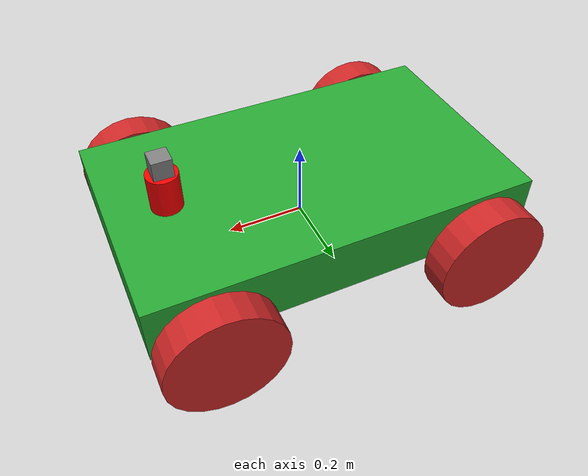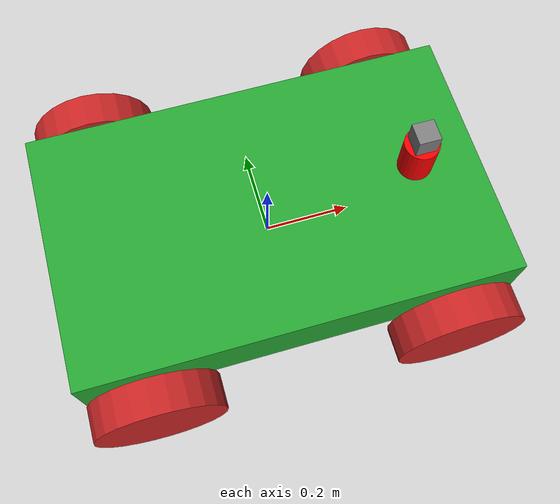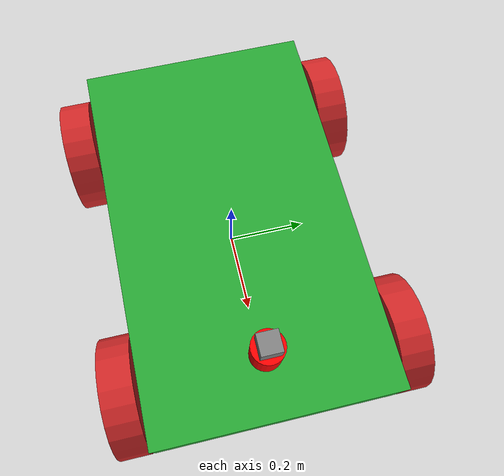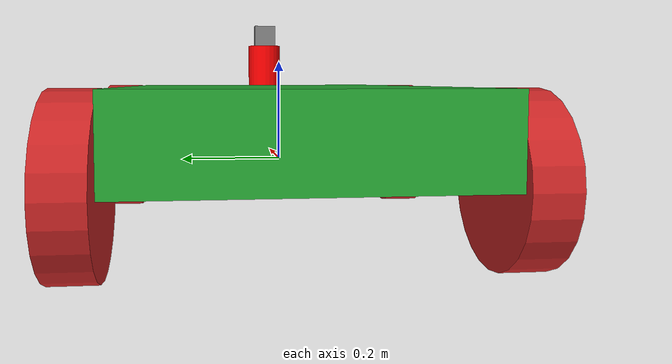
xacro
<?xml version="1.0"?>
<robot name="Mclaren_p1" xmlns:xacro="http://www.ros.org/wiki/xacro">

  <!-- Parameters -->
 <xacro:property name="wheel_radius" value="0.15"/>
 <xacro:property name="wheel_width"  value="0.08"/>
 <xacro:property name="wheel_mass"   value="1.5"/>
 <xacro:property name="body_length"  value="1.0"/>
 <xacro:property name="body_width"   value="0.6"/>
 <xacro:property name="body_height"  value="0.15"/>
 <xacro:property name="body_mass"    value="6.0"/>

  <link name="base_link">
    <visual>
      <origin xyz="0 0 ${body_height/2}" rpy="0 0 0"/>
      <geometry><box size="${body_length} ${body_width} ${body_height}"/></geometry>
    </visual>
    <collision>
      <origin xyz="0 0 ${body_height/2}" rpy="0 0 0"/>
      <geometry><box size="${body_length} ${body_width} ${body_height}"/></geometry>
    </collision>
    <inertial>
      <origin xyz="0 0 0" rpy="0 0 0"/>
      <mass value="${body_mass}"/>
      <inertia ixx="1" ixy="0" ixz="0" iyy="1" iyz="0" izz="1"/>
    </inertial>
  </link>

  <!-- ───────────── lidar mount ───────────── -->
<link name="lidar_link">
  <visual>
    <origin xyz="0 0 0" rpy="0 0 0"/>
    <!-- cylinder axis = +Z, full length = 0.30 m -->
    <geometry><cylinder radius="0.04" length="0.1"/></geometry>
    <material name="LidarRed"><color rgba="1 0 0 1"/></material>
  </visual>

  <collision>
    <origin xyz="0 0 0" rpy="0 0 0"/>
    <geometry><cylinder radius="0.03" length="0.1"/></geometry>
  </collision>

  <inertial>
    <mass value="0.1"/>
    <origin xyz="0 0 0" rpy="0 0 0"/>
    <inertia ixx="0.01" iyy="0.01" izz="0.01"
             ixy="0" ixz="0" iyz="0"/>
  </inertial>
</link>

<!-- Attach mast to chassis at (0.3, 0, 0.40) -->
<joint name="lidar_joint" type="fixed">
  <parent link="base_link"/>
  <child  link="lidar_link"/>
  <origin xyz="0.35 0 0.2" rpy="0 0 0"/>
</joint>

<!-- Gazebo ray sensor placed on mast top (+0.15 m) -->
<gazebo reference="lidar_link">
  <sensor name="lidar_sensor" type="ray">
    <!-- Pose is relative to lidar_link -->
    <pose>0 0 0.2 0 0 0</pose>
    <visualize>true</visualize>
    <update_rate>10</update_rate>

    <ray>
      <scan>
        <horizontal>
          <samples>720</samples>
          <resolution>1</resolution>
          <min_angle>-1.5708</min_angle>
          <max_angle> 1.5708</max_angle>
        </horizontal>
      </scan>
      <range>
        <min>0.08</min>
        <max>10.0</max>
        <resolution>0.01</resolution>
      </range>
    </ray>

 <plugin name="gazebo_ros_laser_controller"
            filename="libgazebo_ros_ray_sensor.so">
      <!-- publish LaserScan on /scan -->
      <topicName>/scan</topicName>
      <frame_name>lidar_link</frame_name>
      <output_type>sensor_msgs/LaserScan</output_type>

      <ros>
        <remapping>~/out:=scan</remapping>
      </ros>
    </plugin>
  </sensor>
</gazebo>

<!-- Camera link -->
<link name="camera_link">
  <visual>
    <origin xyz="0 0 0" rpy="0 0 0"/>
    <geometry>
      <box size="0.05 0.05 0.05"/>
    </geometry>
    <material name="gray">
      <color rgba="0.5 0.5 0.5 1.0"/>
    </material>
  </visual>
  <collision>
    <origin xyz="0 0 0" rpy="0 0 0"/>
    <geometry>
      <box size="0.05 0.05 0.05"/>
    </geometry>
  </collision>
  <inertial>
    <mass value="0.05"/>
    <origin xyz="0 0 0" rpy="0 0 0"/>
    <inertia ixx="0.001" ixy="0" ixz="0" iyy="0.001" iyz="0" izz="0.001"/>
  </inertial>
</link>

<joint name="camera_joint" type="fixed">
  <parent link="base_link"/>
  <child link="camera_link"/>
  <origin xyz="0.35 0 0.275" rpy="0 0 0"/> <!-- Adjust position as needed -->
</joint>

<gazebo reference="camera_link">
  <sensor name="camera_sensor" type="camera">
    <pose>0 0 0 0 0 0</pose> <!-- position relative to camera_link -->
    <visualize>true</visualize>
    <update_rate>30.0</update_rate>
    <camera>
      <horizontal_fov>1.3962634</horizontal_fov> <!-- 80 degrees -->
      <image>
        <width>640</width>
        <height>480</height>
        <format>R8G8B8</format>
      </image>
      <clip>
        <near>0.1</near>
        <far>100</far>
      </clip>
    </camera>
    <plugin name="camera_controller" filename="libgazebo_ros_camera.so">
      <ros>
        <remapping>image_raw:=/camera/image_raw</remapping>
      </ros>
      <camera_name>camera</camera_name>
      <frame_name>camera_link</frame_name>
    </plugin>
  </sensor>
</gazebo>

  <!-- ───────────── wheel macro ───────────── -->
  <xacro:macro name="wheel" params="name x y z">
    <link name="${name}">
      <!-- 🆕 rotate cylinder 90 deg about X so its axis is +Y -->
      <visual>
        <origin xyz="0 0 0" rpy="1.5708 0 0"/>
        <geometry><cylinder radius="${wheel_radius}" length="${wheel_width}"/></geometry>
      </visual>
      <collision>
        <origin xyz="0 0 0" rpy="1.5708 0 0"/>
        <geometry><cylinder radius="${wheel_radius}" length="${wheel_width}"/></geometry>
        <surface>
        <friction>
          <ode>
            <mu>1.0</mu>
            <mu2>1.0</mu2>
          </ode>
        </friction>
      </surface>
      </collision>
      <inertial>
        <origin xyz="0 0 0" rpy="0 0 0"/>
        <mass value="${wheel_mass}"/>
        <inertia
          ixx="${0.5*wheel_mass*wheel_radius*wheel_radius}"
          iyy="${0.5*wheel_mass*wheel_radius*wheel_radius}"
          izz="${0.5*wheel_mass*wheel_radius*wheel_radius}"
          ixy="0" ixz="0" iyz="0"/>
      </inertial>
    </link>

    <joint name="${name}_joint" type="continuous">
      <parent link="base_link"/>
      <child  link="${name}"/>
      <origin xyz="${x} ${y} ${z}" rpy="0 0 0"/>
      <axis   xyz="0 1 0"/>
    </joint>
  </xacro:macro>

  <xacro:wheel name="front_left_wheel"  x=" 0.35" y=" 0.35" z="0"/>
  <xacro:wheel name="front_right_wheel" x=" 0.35" y="-0.35" z="0"/>
  <xacro:wheel name="back_left_wheel"   x="-0.35" y=" 0.35" z="0"/>
  <xacro:wheel name="back_right_wheel"  x="-0.35" y="-0.35" z="0"/>

  <gazebo reference="base_link"><material>Gazebo/Green</material></gazebo>
  <gazebo reference="front_left_wheel"><material>Gazebo/Red</material></gazebo>
  <gazebo reference="front_right_wheel"><material>Gazebo/Red</material></gazebo>
  <gazebo reference="back_left_wheel"><material>Gazebo/Red</material></gazebo>
  <gazebo reference="back_right_wheel"><material>Gazebo/Red</material></gazebo>

</robot>
